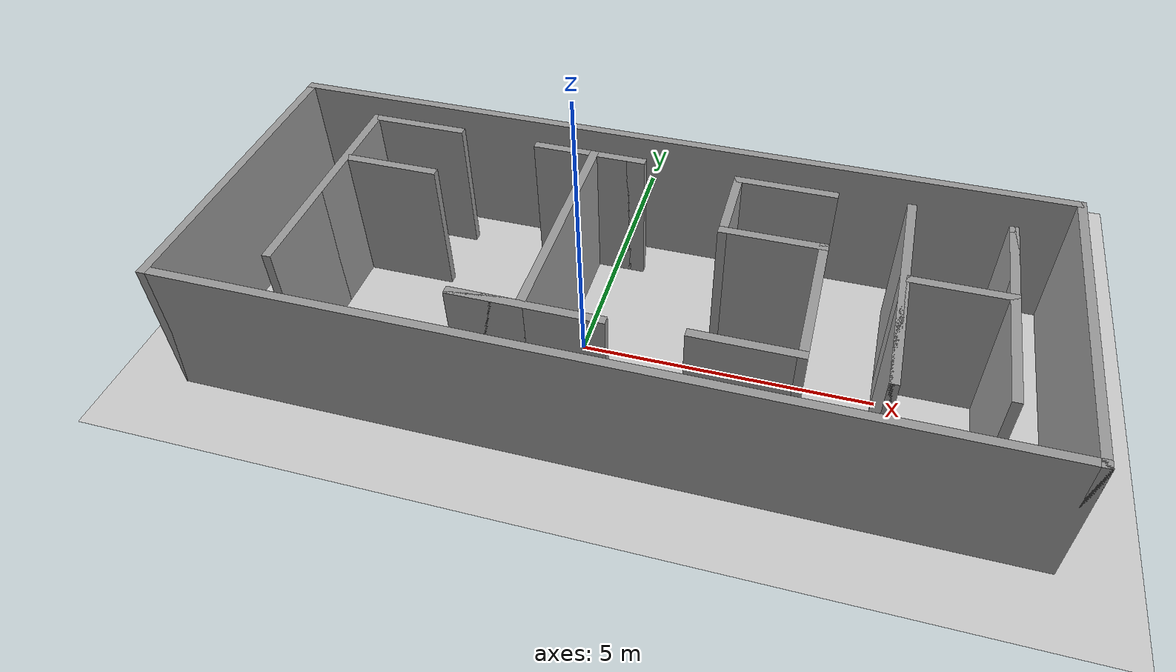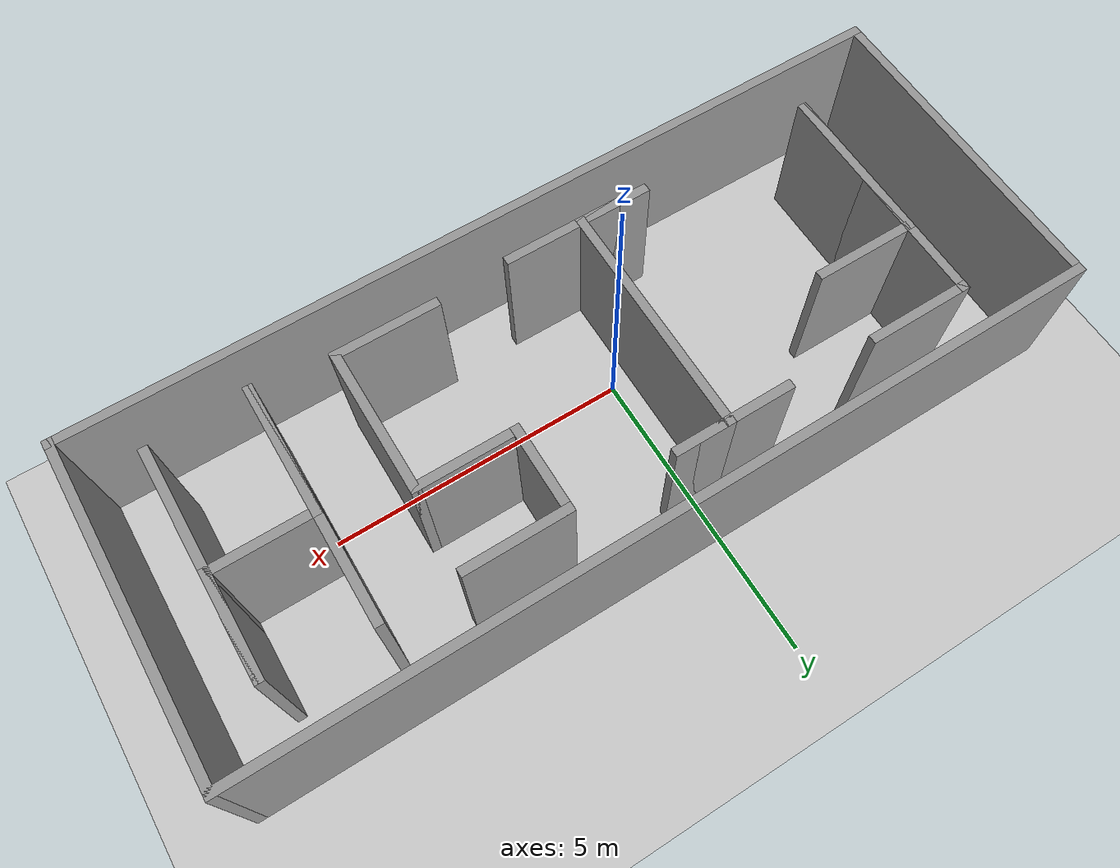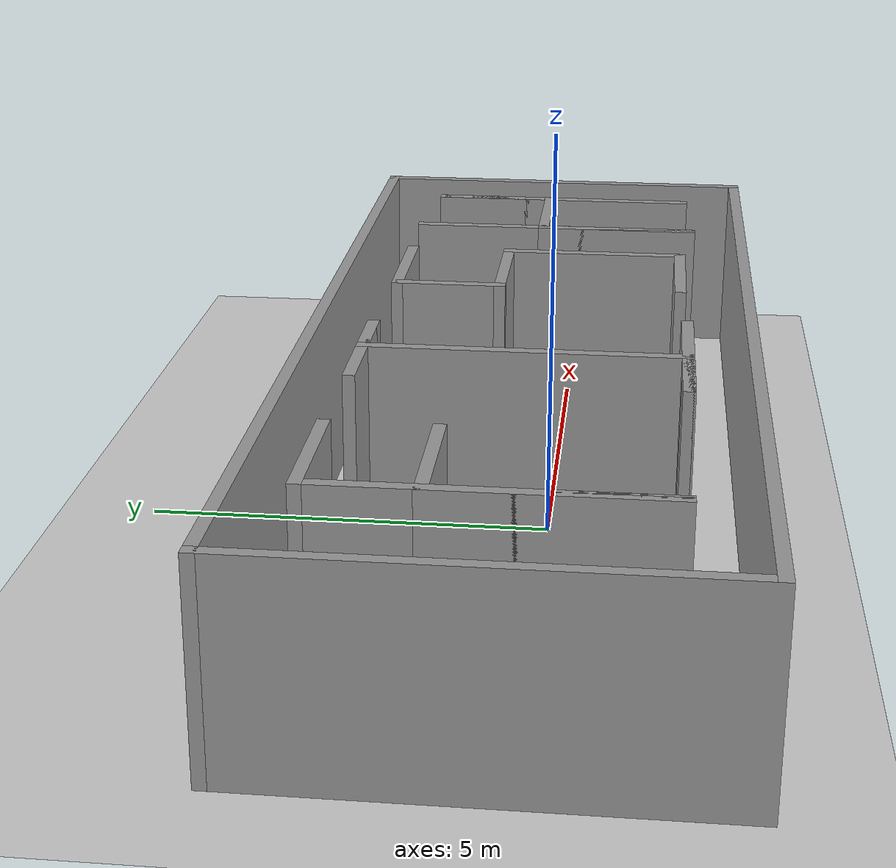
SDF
<sdf version="1.7">
 <world name="default">
  <plugin name="gazebo_ros_factory" filename="libgazebo_ros_factory.so"/>
  <light name="sun" type="directional">
   <pose>0 0 10 0 -0 0</pose>
   <diffuse>0.8 0.8 0.8 1</diffuse>
   <specular>0.2 0.2 0.2 1</specular>
   <attenuation>
    <range>1000</range>
    <constant>0.9</constant>
    <linear>0.01</linear>
    <quadratic>0.001</quadratic>
   </attenuation>
   <direction>-0.5 0.1 -0.9</direction>
   <spot><inner_angle>0</inner_angle><outer_angle>0</outer_angle><falloff>0</falloff></spot>
  </light>
  <model name="ground_plane">
   <static>1</static>
   <link name="link">
    <collision name="collision">
     <geometry><plane><normal>0 0 1</normal><size>100 100</size></plane></geometry>
     <surface><friction><ode><mu>100</mu><mu2>50</mu2></ode></friction></surface>
    </collision>
    <visual name="visual">
     <cast_shadows>0</cast_shadows>
     <geometry><plane><normal>0 0 1</normal><size>100 100</size></plane></geometry>
     <material>
      <script><uri>file://media/materials/scripts/gazebo.material</uri><name>Gazebo/Grey</name></script>
     </material>
    </visual>
   </link>
  </model>
  <gravity>0 0 -9.8</gravity>
  <magnetic_field>6e-06 2.3e-05 -4.2e-05</magnetic_field>
  <atmosphere type="adiabatic"/>
  <physics type="ode">
   <max_step_size>0.001</max_step_size>
   <real_time_factor>1</real_time_factor>
   <real_time_update_rate>1000</real_time_update_rate>
  </physics>
  <scene><ambient>0.4 0.4 0.4 1</ambient><background>0.7 0.7 0.7 1</background><shadows>1</shadows></scene>
  <spherical_coordinates>
   <surface_model>EARTH_WGS84</surface_model>
   <latitude_deg>0</latitude_deg>
   <longitude_deg>0</longitude_deg>
   <elevation>0</elevation>
   <heading_deg>0</heading_deg>
  </spherical_coordinates>
  <model name="fishwall">
   <pose>0.759922 0.266625 0 0 -0 0</pose>
   <link name="Wall_0">
    <collision name="Wall_0_Collision">
     <geometry><box><size>1.75 0.15 2.5</size></box></geometry>
     <pose>0 0 1.25 0 -0 0</pose>
    </collision>
    <visual name="Wall_0_Visual">
     <pose>0 0 1.25 0 -0 0</pose>
     <geometry><box><size>1.75 0.15 2.5</size></box></geometry>
     <material>
      <script><uri>file://media/materials/scripts/gazebo.material</uri><name>Gazebo/Grey</name></script>
      <ambient>1 1 1 1</ambient>
     </material>
     <meta><layer>0</layer></meta>
    </visual>
    <pose>-4.48245 2.00582 0 0 -0 0</pose>
   </link>
   <link name="Wall_11">
    <collision name="Wall_11_Collision">
     <geometry><box><size>2 0.15 2.5</size></box></geometry>
     <pose>0 0 1.25 0 -0 0</pose>
    </collision>
    <visual name="Wall_11_Visual">
     <pose>0 0 1.25 0 -0 0</pose>
     <geometry><box><size>2 0.15 2.5</size></box></geometry>
     <material>
      <script><uri>file://media/materials/scripts/gazebo.material</uri><name>Gazebo/Grey</name></script>
      <ambient>1 1 1 1</ambient>
     </material>
     <meta><layer>0</layer></meta>
    </visual>
    <pose>-1.23966 1.96019 0 0 -0 0</pose>
   </link>
   <link name="Wall_12">
    <collision name="Wall_12_Collision">
     <geometry><box><size>1 0.15 2.5</size></box></geometry>
     <pose>0 0 1.25 0 -0 0</pose>
    </collision>
    <visual name="Wall_12_Visual">
     <pose>0 0 1.25 0 -0 0</pose>
     <geometry><box><size>1 0.15 2.5</size></box></geometry>
     <material>
      <script><uri>file://media/materials/scripts/gazebo.material</uri><name>Gazebo/Grey</name></script>
      <ambient>1 1 1 1</ambient>
     </material>
     <meta><layer>0</layer></meta>
    </visual>
    <pose>-0.739661 1.96019 0 0 -0 3.14159</pose>
   </link>
   <link name="Wall_13">
    <collision name="Wall_13_Collision">
     <geometry><box><size>4 0.15 2.5</size></box></geometry>
     <pose>0 0 1.25 0 -0 0</pose>
    </collision>
    <visual name="Wall_13_Visual">
     <pose>0 0 1.25 0 -0 0</pose>
     <geometry><box><size>4 0.15 2.5</size></box></geometry>
     <material>
      <script><uri>file://media/materials/scripts/gazebo.material</uri><name>Gazebo/Grey</name></script>
      <ambient>1 1 1 1</ambient>
     </material>
     <meta><layer>0</layer></meta>
    </visual>
    <pose>-1.16466 0.035189 0 0 -0 -1.5708</pose>
   </link>
   <link name="Wall_14">
    <collision name="Wall_14_Collision">
     <geometry><box><size>1.25 0.15 2.5</size></box></geometry>
     <pose>0 0 1.25 0 -0 0</pose>
    </collision>
    <visual name="Wall_14_Visual">
     <pose>0 0 1.25 0 -0 0</pose>
     <geometry><box><size>1.25 0.15 2.5</size></box></geometry>
     <material>
      <script><uri>file://media/materials/scripts/gazebo.material</uri><name>Gazebo/Grey</name></script>
      <ambient>1 1 1 1</ambient>
     </material>
     <meta><layer>0</layer></meta>
    </visual>
    <pose>-1.71466 -1.88981 0 0 -0 3.14159</pose>
   </link>
   <link name="Wall_15">
    <collision name="Wall_15_Collision">
     <geometry><box><size>2.5 0.15 2.5</size></box></geometry>
     <pose>0 0 1.25 0 -0 0</pose>
    </collision>
    <visual name="Wall_15_Visual">
     <pose>0 0 1.25 0 -0 0</pose>
     <geometry><box><size>2.5 0.15 2.5</size></box></geometry>
     <material>
      <script><uri>file://media/materials/scripts/gazebo.material</uri><name>Gazebo/Grey</name></script>
      <ambient>1 1 1 1</ambient>
     </material>
     <meta><layer>0</layer></meta>
    </visual>
    <pose>-1.08966 -1.88981 0 0 -0 0</pose>
   </link>
   <link name="Wall_17">
    <collision name="Wall_17_Collision">
     <geometry><box><size>1.75 0.15 2.5</size></box></geometry>
     <pose>0 0 1.25 0 -0 0</pose>
    </collision>
    <visual name="Wall_17_Visual">
     <pose>0 0 1.25 0 -0 0</pose>
     <geometry><box><size>1.75 0.15 2.5</size></box></geometry>
     <material>
      <script><uri>file://media/materials/scripts/gazebo.material</uri><name>Gazebo/Grey</name></script>
      <ambient>1 1 1 1</ambient>
     </material>
     <meta><layer>0</layer></meta>
    </visual>
    <pose>2.1911 1.88414 0 0 -0 3.14159</pose>
   </link>
   <link name="Wall_18">
    <collision name="Wall_18_Collision">
     <geometry><box><size>1.5 0.15 2.5</size></box></geometry>
     <pose>0 0 1.25 0 -0 0</pose>
    </collision>
    <visual name="Wall_18_Visual">
     <pose>0 0 1.25 0 -0 0</pose>
     <geometry><box><size>1.5 0.15 2.5</size></box></geometry>
     <material>
      <script><uri>file://media/materials/scripts/gazebo.material</uri><name>Gazebo/Grey</name></script>
      <ambient>1 1 1 1</ambient>
     </material>
     <meta><layer>0</layer></meta>
    </visual>
    <pose>1.39111 1.20914 0 0 -0 -1.5708</pose>
   </link>
   <link name="Wall_19">
    <collision name="Wall_19_Collision">
     <geometry><box><size>1.75 0.15 2.5</size></box></geometry>
     <pose>0 0 1.25 0 -0 0</pose>
    </collision>
    <visual name="Wall_19_Visual">
     <pose>0 0 1.25 0 -0 0</pose>
     <geometry><box><size>1.75 0.15 2.5</size></box></geometry>
     <material>
      <script><uri>file://media/materials/scripts/gazebo.material</uri><name>Gazebo/Grey</name></script>
      <ambient>1 1 1 1</ambient>
     </material>
     <meta><layer>0</layer></meta>
    </visual>
    <pose>2.1911 0.534145 0 0 -0 0</pose>
   </link>
   <link name="Wall_2">
    <collision name="Wall_2_Collision">
     <geometry><box><size>4 0.15 2.5</size></box></geometry>
     <pose>0 0 1.25 0 -0 0</pose>
    </collision>
    <visual name="Wall_2_Visual">
     <pose>0 0 1.25 0 -0 0</pose>
     <geometry><box><size>4 0.15 2.5</size></box></geometry>
     <material>
      <script><uri>file://media/materials/scripts/gazebo.material</uri><name>Gazebo/Grey</name></script>
      <ambient>1 1 1 1</ambient>
     </material>
     <meta><layer>0</layer></meta>
    </visual>
    <pose>-5.28245 0.080815 0 0 -0 -1.5708</pose>
   </link>
   <link name="Wall_20">
    <collision name="Wall_20_Collision">
     <geometry><box><size>2.5 0.15 2.5</size></box></geometry>
     <pose>0 0 1.25 0 -0 0</pose>
    </collision>
    <visual name="Wall_20_Visual">
     <pose>0 0 1.25 0 -0 0</pose>
     <geometry><box><size>2.5 0.15 2.5</size></box></geometry>
     <material>
      <script><uri>file://media/materials/scripts/gazebo.material</uri><name>Gazebo/Grey</name></script>
      <ambient>1 1 1 1</ambient>
     </material>
     <meta><layer>0</layer></meta>
    </visual>
    <pose>2.99111 -0.640855 0 0 -0 -1.5708</pose>
   </link>
   <link name="Wall_21">
    <collision name="Wall_21_Collision">
     <geometry><box><size>1.75 0.15 2.5</size></box></geometry>
     <pose>0 0 1.25 0 -0 0</pose>
    </collision>
    <visual name="Wall_21_Visual">
     <pose>0 0 1.25 0 -0 0</pose>
     <geometry><box><size>1.75 0.15 2.5</size></box></geometry>
     <material>
      <script><uri>file://media/materials/scripts/gazebo.material</uri><name>Gazebo/Grey</name></script>
      <ambient>1 1 1 1</ambient>
     </material>
     <meta><layer>0</layer></meta>
    </visual>
    <pose>2.1911 -1.81585 0 0 -0 3.14159</pose>
   </link>
   <link name="Wall_23">
    <collision name="Wall_23_Collision">
     <geometry><box><size>4 0.15 2.5</size></box></geometry>
     <pose>0 0 1.25 0 -0 0</pose>
    </collision>
    <visual name="Wall_23_Visual">
     <pose>0 0 1.25 0 -0 0</pose>
     <geometry><box><size>4 0.15 2.5</size></box></geometry>
     <material>
      <script><uri>file://media/materials/scripts/gazebo.material</uri><name>Gazebo/Grey</name></script>
      <ambient>1 1 1 1</ambient>
     </material>
     <meta><layer>0</layer></meta>
    </visual>
    <pose>4.25343 -0.040855 0 0 -0 -1.5708</pose>
   </link>
   <link name="Wall_24">
    <collision name="Wall_24_Collision">
     <geometry><box><size>2.25 0.15 2.5</size></box></geometry>
     <pose>0 0 1.25 0 -0 0</pose>
    </collision>
    <visual name="Wall_24_Visual">
     <pose>0 0 1.25 0 -0 0</pose>
     <geometry><box><size>2.25 0.15 2.5</size></box></geometry>
     <material>
      <script><uri>file://media/materials/scripts/gazebo.material</uri><name>Gazebo/Grey</name></script>
      <ambient>1 1 1 1</ambient>
     </material>
     <meta><layer>0</layer></meta>
    </visual>
    <pose>4.25343 -0.915855 0 0 -0 1.5708</pose>
   </link>
   <link name="Wall_25">
    <collision name="Wall_25_Collision">
     <geometry><box><size>1.75 0.15 2.5</size></box></geometry>
     <pose>0 0 1.25 0 -0 0</pose>
    </collision>
    <visual name="Wall_25_Visual">
     <pose>0 0 1.25 0 -0 0</pose>
     <geometry><box><size>1.75 0.15 2.5</size></box></geometry>
     <material>
      <script><uri>file://media/materials/scripts/gazebo.material</uri><name>Gazebo/Grey</name></script>
      <ambient>1 1 1 1</ambient>
     </material>
     <meta><layer>0</layer></meta>
    </visual>
    <pose>5.05343 0.134145 0 0 -0 0</pose>
   </link>
   <link name="Wall_26">
    <collision name="Wall_26_Collision">
     <geometry><box><size>1.75 0.15 2.5</size></box></geometry>
     <pose>0 0 1.25 0 -0 0</pose>
    </collision>
    <visual name="Wall_26_Visual">
     <pose>0 0 1.25 0 -0 0</pose>
     <geometry><box><size>1.75 0.15 2.5</size></box></geometry>
     <material>
      <script><uri>file://media/materials/scripts/gazebo.material</uri><name>Gazebo/Grey</name></script>
      <ambient>1 1 1 1</ambient>
     </material>
     <meta><layer>0</layer></meta>
    </visual>
    <pose>5.85343 0.934145 0 0 -0 1.5708</pose>
   </link>
   <link name="Wall_27">
    <collision name="Wall_27_Collision">
     <geometry><box><size>0.15 0.15 2.5</size></box></geometry>
     <pose>0 0 1.25 0 -0 0</pose>
    </collision>
    <visual name="Wall_27_Visual">
     <pose>0 0 1.25 0 -0 0</pose>
     <geometry><box><size>0.15 0.15 2.5</size></box></geometry>
     <material>
      <script><uri>file://media/materials/scripts/gazebo.material</uri><name>Gazebo/Grey</name></script>
      <ambient>1 1 1 1</ambient>
     </material>
     <meta><layer>0</layer></meta>
    </visual>
    <pose>5.85343 1.73415 0 0 -0 0</pose>
   </link>
   <link name="Wall_28">
    <collision name="Wall_28_Collision">
     <geometry><box><size>3.75 0.15 2.5</size></box></geometry>
     <pose>0 0 1.25 0 -0 0</pose>
    </collision>
    <visual name="Wall_28_Visual">
     <pose>0 0 1.25 0 -0 0</pose>
     <geometry><box><size>3.75 0.15 2.5</size></box></geometry>
     <material>
      <script><uri>file://media/materials/scripts/gazebo.material</uri><name>Gazebo/Grey</name></script>
      <ambient>1 1 1 1</ambient>
     </material>
     <meta><layer>0</layer></meta>
    </visual>
    <pose>5.85343 -0.065855 0 0 -0 -1.5708</pose>
   </link>
   <link name="Wall_3">
    <collision name="Wall_3_Collision">
     <geometry><box><size>2.75 0.15 2.5</size></box></geometry>
     <pose>0 0 1.25 0 -0 0</pose>
    </collision>
    <visual name="Wall_3_Visual">
     <pose>0 0 1.25 0 -0 0</pose>
     <geometry><box><size>2.75 0.15 2.5</size></box></geometry>
     <material>
      <script><uri>file://media/materials/scripts/gazebo.material</uri><name>Gazebo/Grey</name></script>
      <ambient>1 1 1 1</ambient>
     </material>
     <meta><layer>0</layer></meta>
    </visual>
    <pose>-5.28245 -0.544185 0 0 -0 1.5708</pose>
   </link>
   <link name="Wall_4">
    <collision name="Wall_4_Collision">
     <geometry><box><size>1.75 0.15 2.5</size></box></geometry>
     <pose>0 0 1.25 0 -0 0</pose>
    </collision>
    <visual name="Wall_4_Visual">
     <pose>0 0 1.25 0 -0 0</pose>
     <geometry><box><size>1.75 0.15 2.5</size></box></geometry>
     <material>
      <script><uri>file://media/materials/scripts/gazebo.material</uri><name>Gazebo/Grey</name></script>
      <ambient>1 1 1 1</ambient>
     </material>
     <meta><layer>0</layer></meta>
    </visual>
    <pose>-4.48245 0.755815 0 0 -0 0</pose>
   </link>
   <link name="Wall_6">
    <collision name="Wall_6_Collision">
     <geometry><box><size>5.5 0.15 2.5</size></box></geometry>
     <pose>0 0 1.25 0 -0 0</pose>
    </collision>
    <visual name="Wall_6_Visual">
     <pose>0 0 1.25 0 -0 0</pose>
     <geometry><box><size>5.5 0.15 2.5</size></box></geometry>
     <material>
      <script><uri>file://media/materials/scripts/gazebo.material</uri><name>Gazebo/Grey</name></script>
      <ambient>1 1 1 1</ambient>
     </material>
     <meta><layer>0</layer></meta>
    </visual>
    <pose>-6.925 0 0 0 -0 -1.5708</pose>
   </link>
   <link name="Wall_7">
    <collision name="Wall_7_Collision">
     <geometry><box><size>14 0.15 2.5</size></box></geometry>
     <pose>0 0 1.25 0 -0 0</pose>
    </collision>
    <visual name="Wall_7_Visual">
     <pose>0 0 1.25 0 -0 0</pose>
     <geometry><box><size>14 0.15 2.5</size></box></geometry>
     <material>
      <script><uri>file://media/materials/scripts/gazebo.material</uri><name>Gazebo/Grey</name></script>
      <ambient>1 1 1 1</ambient>
     </material>
     <meta><layer>0</layer></meta>
    </visual>
    <pose>0 -2.675 0 0 -0 0</pose>
   </link>
   <link name="Wall_8">
    <collision name="Wall_8_Collision">
     <geometry><box><size>5.5 0.15 2.5</size></box></geometry>
     <pose>0 0 1.25 0 -0 0</pose>
    </collision>
    <visual name="Wall_8_Visual">
     <pose>0 0 1.25 0 -0 0</pose>
     <geometry><box><size>5.5 0.15 2.5</size></box></geometry>
     <material>
      <script><uri>file://media/materials/scripts/gazebo.material</uri><name>Gazebo/Grey</name></script>
      <ambient>1 1 1 1</ambient>
     </material>
     <meta><layer>0</layer></meta>
    </visual>
    <pose>6.925 0 0 0 -0 1.5708</pose>
   </link>
   <link name="Wall_9">
    <collision name="Wall_9_Collision">
     <geometry><box><size>14 0.15 2.5</size></box></geometry>
     <pose>0 0 1.25 0 -0 0</pose>
    </collision>
    <visual name="Wall_9_Visual">
     <pose>0 0 1.25 0 -0 0</pose>
     <geometry><box><size>14 0.15 2.5</size></box></geometry>
     <material>
      <script><uri>file://media/materials/scripts/gazebo.material</uri><name>Gazebo/Grey</name></script>
      <ambient>1 1 1 1</ambient>
     </material>
     <meta><layer>0</layer></meta>
    </visual>
    <pose>0 2.675 0 0 -0 3.14159</pose>
   </link>
   <static>1</static>
  </model>
 </world>
</sdf>
